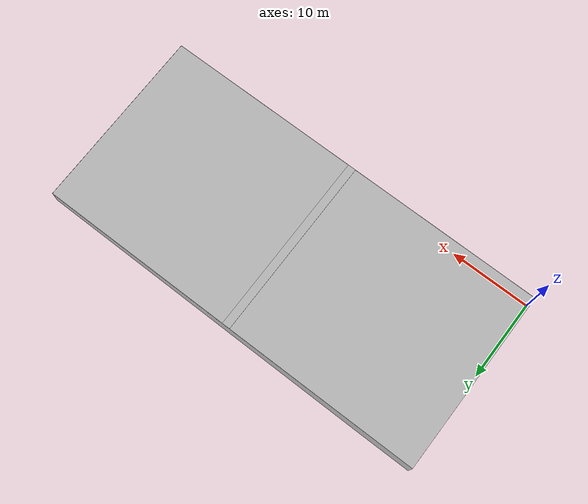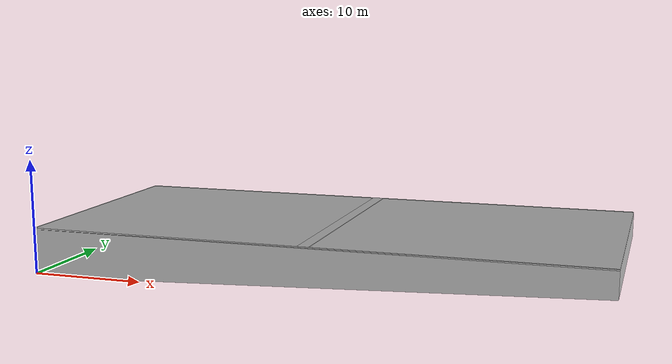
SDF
<?xml version="1.0" ?>
<sdf version="1.5">
  <model name="umd">
    <static>true</static>
    <link name="link">

      <collision name="collision">
        <pose>0 0 0 0 0 0</pose>
        <geometry>
          <mesh><uri>model://umd/meshes/umd.dae</uri></mesh>
        </geometry>
      </collision>

      <visual name="visual">
        <cast_shadows>true</cast_shadows>
        <pose>0 0 0 0 0 0</pose>
        <geometry>
          <mesh>
            <uri>model://umd/meshes/umd.dae</uri>
            <scale>1.0 1.0 1.0</scale>
          </mesh>
        </geometry>
      </visual>

      <visual name="surface">
        <cast_shadows>false</cast_shadows>
        <pose>24.7 11.4 4 0 0 0</pose>
        <geometry>
          <box>
            <size>49.4 22.8 .1</size>
          </box>
        </geometry>
        <material>
          <script>
            <uri>file://Media/materials/scripts/water.material</uri>
            <name>UUVSimulator/StaticDeepWater</name>
          </script>
        </material>
      </visual>

    </link>
  </model>
</sdf>
